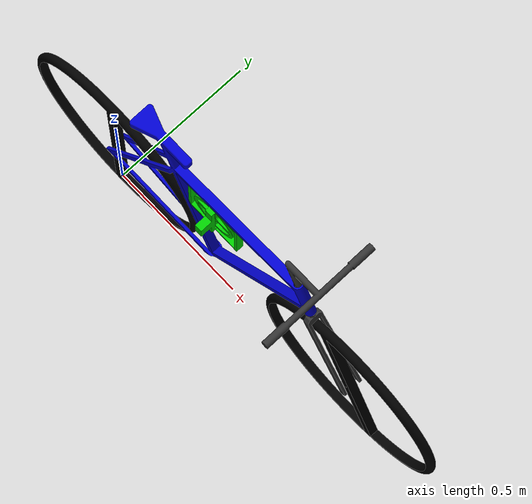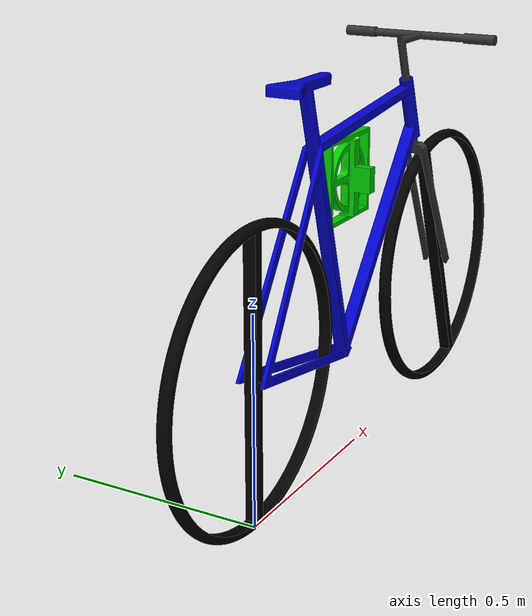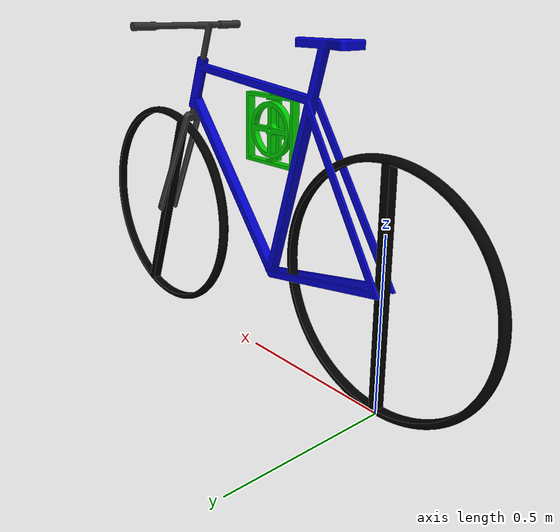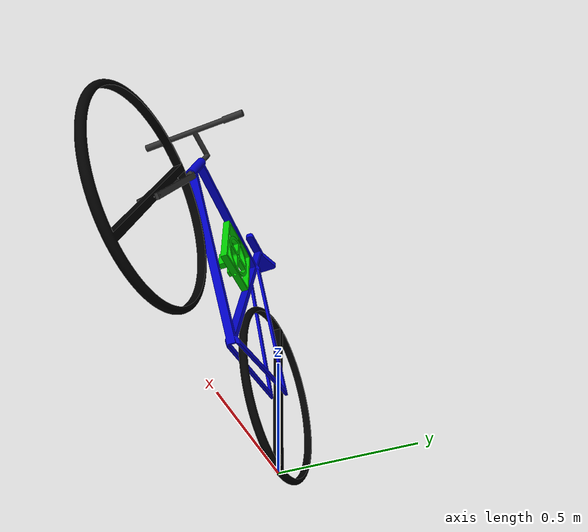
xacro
<?xml version="1.0"?>

<!-- DESCRIPTION: Extension of bicycle model with gimballed flywheel.-->

<robot name="bicycle" xmlns:xacro="http://www.ros.org/wiki/xacro">
<!-- CAD URL: https://cad.onshape.com/documents/e5ef9716c5b71004058bf9ce/w/ae8819e9743ff8e3d490a09a/e/5a0b072f3be44112fc069069 -->

  <!-- Import baseline model -->
  <xacro:include filename="$(find bicycle_description)/urdf/baseline_model.urdf.xacro" />

  <!-- Import gazebo specific tags for this model -->
  <xacro:include filename="$(find bicycle_description)/urdf/gyro.gazebo" />

  <!-- ______Inertia Parameters______ -->

  <!-- flywheel (f) -->
  <xacro:property name="m_f" value="${1.3}"/>

  <xacro:property name="I_fxx" value="${0.005}"/>
  <xacro:property name="I_fyy" value="${0.002}"/>
  <xacro:property name="I_fzz" value="${0.002}"/>
  <xacro:property name="I_fxy" value="${0}"/>
  <xacro:property name="I_fxz" value="${0}"/>
  <xacro:property name="I_fyz" value="${0}"/>

  <xacro:property name="x_f" value="${0}"/>
  <xacro:property name="y_f" value="${0}"/>
  <xacro:property name="z_f" value="${0}"/>

  <!-- Gimbal frame (G) -->
  <xacro:property name="m_G" value="${0.5}"/>

  <xacro:property name="I_Gxx" value="${0.003}"/>
  <xacro:property name="I_Gyy" value="${0.006}"/>
  <xacro:property name="I_Gzz" value="${0.002}"/>
  <xacro:property name="I_Gxy" value="${0}"/>
  <xacro:property name="I_Gxz" value="${0}"/>
  <xacro:property name="I_Gyz" value="${0}"/>

  <xacro:property name="x_G" value="${0}"/>
  <xacro:property name="y_G" value="${0}"/>
  <xacro:property name="z_G" value="${0}"/>

  <!-- gimbal (g) -->
  <xacro:property name="m_g" value="${0.5}"/>

  <xacro:property name="I_gxx" value="${0.001}"/>
  <xacro:property name="I_gyy" value="${0.001}"/>
  <xacro:property name="I_gzz" value="${0.0001}"/>
  <xacro:property name="I_gxy" value="${0}"/>
  <xacro:property name="I_gxz" value="${0}"/>
  <xacro:property name="I_gyz" value="${0}"/>

  <xacro:property name="x_g" value="${0}"/>
  <xacro:property name="y_g" value="${0.033}"/>
  <xacro:property name="z_g" value="${0}"/>

  <!--_____________FLYWHEEL LINK_________-->

  <!-- Flywheel mesh has origin at center, and is oriented with x-axis along flywheel
  spin axis. -->

   <link name="flywheel">
    <visual>
      <origin rpy="0 0 0" xyz="0 0 0"/>
      <geometry>
          <mesh filename="package://bicycle_description/meshes/gyro_model/flywheel.stl" />
      </geometry>
      <material name="green"/>
    </visual>

    <collision>
      <origin rpy="0 0 0" xyz="0 0 0"/>
      <geometry>
          <mesh filename="package://bicycle_description/meshes/gyro_model/flywheel.stl" />
      </geometry>
    </collision>

    <inertial>
      <origin rpy="0 0 0" xyz="${x_f} ${y_f} ${z_f}"/>
      <mass value="${m_f}"/>
      <inertia ixx="${I_fxx}" ixy="${I_fxy}" ixz="${I_fxy}"
               iyy="${I_fyy}" iyz="${I_fyz}"
               izz="${I_fzz}" />
    </inertial>
  </link>

  <!--_________GIMBAL FRAME LINK_________-->

   <link name="gimbal_frame">
    <visual>
      <origin rpy="0 0 0" xyz="0 0 0"/>
      <geometry>
          <mesh filename="package://bicycle_description/meshes/gyro_model/gimbal_frame.stl" />
      </geometry>
      <material name="green"/>
    </visual>

    <collision>
      <origin rpy="0 0 0" xyz="0 0 0"/>
      <geometry>
          <mesh filename="package://bicycle_description/meshes/gyro_model/gimbal_frame.stl" />
      </geometry>
    </collision>

    <inertial>
      <origin rpy="0 0 0" xyz="${x_G} ${y_G} ${z_G}"/>
      <mass value="${m_G}"/>
      <inertia ixx="${I_Gxx}" ixy="${I_Gxy}" ixz="${I_Gxy}"
               iyy="${I_Gyy}" iyz="${I_Gyz}"
               izz="${I_Gzz}" />
    </inertial>
  </link>

  <!--_____________GIMBAL LINK___________-->

   <link name="gimbal">
    <visual>
      <origin rpy="0 0 0" xyz="0 0 0"/>
      <geometry>
          <mesh filename="package://bicycle_description/meshes/gyro_model/gimbal.stl" />
      </geometry>
      <material name="green"/>
    </visual>

    <inertial>
      <origin rpy="0 0 0" xyz="${x_g} ${y_g} ${z_g}"/>
      <mass value="${m_g}"/>
      <inertia ixx="${I_gxx}" ixy="${I_gxy}" ixz="${I_gxy}"
               iyy="${I_gyy}" iyz="${I_gyz}"
               izz="${I_gzz}" />
    </inertial>
  </link>

  <!--______________JOINTS_______________-->

  <!-- Connects gimbal_frame to back_frame. The xyz offset is relative to center
  of back_wheel axle (where back_frame's joint frame is at).  -->
  <joint name="gimbal_frame_location" type="fixed">
    <parent link="back_frame"/>
    <child link="gimbal_frame"/>
    <origin xyz="0.43 0 0.7" rpy="0 0 0"/>
  </joint>

  <!-- Connects the gimbal to the gimbal_frame -->
  <joint name="gimbal_joint" type="continuous">
    <parent link="gimbal_frame"/>
    <child link="gimbal"/>
    <origin xyz="0 0 0" rpy="0 0 ${PI}"/>
    <axis xyz="0 0 1"/>
    <dynamic damping="0" friction="0.002" />
  </joint>

  <!-- Connects flywheel to gimbal -->
  <joint name="flywheel_joint" type="continuous">
    <parent link="gimbal"/>
    <child link="flywheel"/>
    <origin xyz="0 0 0" rpy="0 0 0"/>
    <axis xyz="0 1 0"/>
    <dynamic damping="0" friction="0.002" />
  </joint>

</robot>

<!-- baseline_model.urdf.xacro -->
<robot name="bicycle" xmlns:xacro="http://www.ros.org/wiki/xacro">
<!-- CAD URL: https://cad.onshape.com/documents/e5ef9716c5b71004058bf9ce/w/ae8819e9743ff8e3d490a09a/e/5a0b072f3be44112fc069069 -->

   <!-- Import Rviz colors -->
  <xacro:include filename="$(find bicycle_description)/urdf/colors.xacro" />

  <!-- Import all Gazebo-customization elements, including Gazebo colors -->
  <xacro:include filename="$(find bicycle_description)/urdf/baseline.gazebo" />

  <!-- Constants for robot dimensions -->
  <xacro:property name="PI" value="3.1415926535897931"/>
  <xacro:property name="DEG2RAD" value="0.0174533"/>

  <!-- Basic Geometric Parameters -->
  <xacro:property name="wheel_radius" value="${0.35}"/>
  <xacro:property name="wheel_base" value="${1.0}"/>
  <xacro:property name="trail" value="${0.08}"/>
  <xacro:property name="steer_axis_tilt" value="${20*DEG2RAD}"/>

  <!-- Derived Values. d1-3 from alternative parameterization -->
  <xacro:property name="wheel_diameter" value="${wheel_radius*2}"/>
  <xacro:property name="d1" value="${cos(steer_axis_tilt)*(trail+wheel_base-wheel_radius*tan(steer_axis_tilt))}"/>
  <xacro:property name="d3" value="${-cos(steer_axis_tilt)*(trail-wheel_radius*tan(steer_axis_tilt))}"/>
  <xacro:property name="d2" value="${(wheel_radius+d1*sin(steer_axis_tilt)-wheel_radius+d3*sin(steer_axis_tilt))/cos(steer_axis_tilt)}"/>

  <!-- ______Inertia Parameters______ -->

  <!-- Front/Back Wheel (w) -->
  <!-- Wheel mesh frame has origin at center of wheel. Frame orientation is such
  that wheel lies in xz plane, with y axis perpindicular (i.e. along rotation axis)-->
  <xacro:property name="m_w" value="${1.5}"/>

  <xacro:property name="I_wxx" value="${0.07}"/>
  <xacro:property name="I_wyy" value="${0.14}"/>
  <xacro:property name="I_wzz" value="${0.07}"/>
  <xacro:property name="I_wxy" value="${0.0}"/>
  <xacro:property name="I_wxz" value="${0.0}"/>
  <xacro:property name="I_wyz" value="${0.0}"/>

  <xacro:property name="x_w" value="${0}"/>
  <xacro:property name="y_w" value="${0}"/>
  <xacro:property name="z_w" value="${0}"/>

  <!-- Main Frame (b) -->
  <xacro:property name="m_b" value="${12}"/>

  <xacro:property name="I_bxx" value="${0.476}"/>
  <xacro:property name="I_byy" value="${1.033}"/>
  <xacro:property name="I_bzz" value="${0.527}"/>
  <xacro:property name="I_bxy" value="${0.0}"/>
  <xacro:property name="I_bxz" value="${-0.274}"/>
  <xacro:property name="I_byz" value="${0.0}"/>

  <xacro:property name="x_b" value="${0.439}"/>
  <xacro:property name="y_b" value="${0}"/>
  <xacro:property name="z_b" value="${0.579}"/>

  <!-- Steering and handlebars (h) -->
  <xacro:property name="m_h" value="${2}"/>

  <xacro:property name="I_hxx" value="${0.08}"/>
  <xacro:property name="I_hyy" value="${0.07}"/>
  <xacro:property name="I_hzz" value="${0.02}"/>
  <xacro:property name="I_hxy" value="${0}"/>
  <xacro:property name="I_hxz" value="${0.02}"/>
  <xacro:property name="I_hyz" value="${0}"/>

  <xacro:property name="x_h" value="${0.866}"/>
  <xacro:property name="y_h" value="${0}"/>
  <xacro:property name="z_h" value="${0.676}"/>

  <!--_________BACK WHEEL LINK____________-->

   <link name="back_wheel">
    <visual>
      <origin rpy="0 0 0" xyz="0 0 0"/>
      <geometry>
          <mesh filename="package://bicycle_description/meshes/baseline_model/wheel_medium.stl" />
      </geometry>
      <material name="black"/>
    </visual>

    <collision>
      <origin rpy="0 0 0" xyz="0 0 0"/>
      <geometry>
          <mesh filename="package://bicycle_description/meshes/baseline_model/wheel_medium.stl" />
      </geometry>
    </collision>

    <inertial>
      <origin rpy="0 0 0" xyz="${x_w} ${y_w} ${z_w}"/>
      <mass value="${m_w}"/>
      <inertia ixx="${I_wxx}" ixy="${I_wxy}" ixz="${I_wxy}"
               iyy="${I_wyy}" iyz="${I_wyz}"
               izz="${I_wzz}" />
    </inertial>
  </link>

  <!--_________BACK FRAME LINK___________-->

   <link name="back_frame">
    <visual>
      <origin rpy="0 0 0" xyz="0 0 ${wheel_radius}"/>
      <geometry>
          <mesh filename="package://bicycle_description/meshes/baseline_model/back_frame.stl" />
      </geometry>
      <material name="blue"/>
    </visual>

    <collision>
      <origin rpy="0 0 0" xyz="0 0 ${wheel_radius}"/>
      <geometry>
          <mesh filename="package://bicycle_description/meshes/baseline_model/back_frame.stl" />
      </geometry>
    </collision>

    <inertial>
      <origin rpy="0 0 0" xyz="${x_b} ${y_b} ${z_b}"/>
      <mass value="${m_b}"/>
      <inertia ixx="${I_bxx}" ixy="${I_bxy}" ixz="${I_bxy}"
               iyy="${I_byy}" iyz="${I_byz}"
               izz="${I_bzz}" />
    </inertial>
  </link>

  <!--_________FRONT FRAME LINK__________-->

   <link name="front_frame">
    <visual>
      <origin rpy="0 0 0" xyz="0 0 0"/>
      <geometry>
          <mesh filename="package://bicycle_description/meshes/baseline_model/front_frame.stl" />
      </geometry>
      <material name="gray"/>
    </visual>

    <collision>
      <origin rpy="0 0 0" xyz="0 0 0"/>
      <geometry>
          <mesh filename="package://bicycle_description/meshes/baseline_model/front_frame.stl" />
      </geometry>
    </collision>

    <inertial>
      <origin rpy="0 ${steer_axis_tilt} 0" xyz="${x_h - d1*cos(steer_axis_tilt)} ${y_h} ${z_h - wheel_radius - d1*sin(steer_axis_tilt)}"/>
      <mass value="${m_h}"/>
      <inertia ixx="${I_hxx}" ixy="${I_hxy}" ixz="${I_hxy}"
               iyy="${I_hyy}" iyz="${I_hyz}"
               izz="${I_hzz}" />
    </inertial>
  </link>

  <!--_________FRONT WHEEL LINK___________-->

   <link name="front_wheel">
    <visual>
      <origin rpy="0 0 0" xyz="0 0 0"/>
      <geometry>
          <mesh filename="package://bicycle_description/meshes/baseline_model/wheel_medium.stl" />
      </geometry>
      <material name="black"/>
    </visual>

    <collision>
      <origin rpy="0 0 0" xyz="0 0 0"/>
      <geometry>
          <mesh filename="package://bicycle_description/meshes/baseline_model/wheel_medium.stl" />
      </geometry>
    </collision>

    <inertial>
      <origin rpy="0 0 0" xyz="${x_w} ${y_w} ${z_w}"/>
      <mass value="${m_w}"/>
      <inertia ixx="${I_wxx}" ixy="${I_wxy}" ixz="${I_wxy}"
               iyy="${I_wyy}" iyz="${I_wyz}"
               izz="${I_wzz}" />
    </inertial>
  </link>

  <!--______________JOINTS_______________-->

  <!-- Connects the back_frame to the back_wheel -->
  <joint name="back_wheel_joint" type="continuous">
    <parent link="back_frame"/>
    <child link="back_wheel"/>
    <origin xyz="0 0 ${wheel_radius}" rpy="0 0 0"/>
    <axis xyz="0 1 0"/>
    <dynamic damping="0" friction="0.002" />
  </joint>

  <!-- Connects the front_frame to the back_frame -->
  <joint name="steering_joint" type="continuous">
    <parent link="back_frame"/>
    <child link="front_frame"/>
    <origin rpy="0 ${-steer_axis_tilt} 0" xyz="${d1*cos(steer_axis_tilt)} 0 ${d1*sin(steer_axis_tilt) + wheel_radius}" />
    <axis xyz="0 0 1"/>
    <dynamic damping="0" friction="0.002" />
  </joint>

  <!-- Connects the front_wheel to front_frame-->
  <joint name="front_wheel_joint" type="continuous">
    <parent link="front_frame"/>
    <child link="front_wheel"/>
    <origin xyz="${d3} 0 ${-d2}" rpy="0 0 0"/>
    <axis xyz="0 1 0"/>
    <dynamic damping="0" friction="0.002" />
  </joint>

  <!--__________DUMMY LINK_______________-->
  <link name="dummy_link">
  </link>

  <joint name="dummy" type="fixed">
    <parent link="dummy_link"/>
    <child link="back_frame"/>
    <origin xyz="0 0 0" rpy="0 0 0"/>
  </joint>

</robot>

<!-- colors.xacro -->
<robot>

    <material name="wood">
        <color rgba="0.8 0.7 0 1"/>
    </material>

    <material name="plastic">
        <color rgba="0.5 0.5 0.5 0.7"/>
    </material>

    <material name="metal">
        <color rgba="0.8 0.8 0.8 1"/>
    </material>

    <material name="blue">
        <color rgba="0 0 0.8 1"/>
    </material>

    <material name="black">
        <color rgba="0 0 0 1"/>
    </material>

    <material name="white">
        <color rgba="1 1 1 1"/>
    </material>

    <material name="green">
        <color rgba="0.0 0.8 0.0 1.0"/>
    </material>

    <material name="gray">
        <color rgba="0.2 0.2 0.2 1.0"/>
    </material>

    <material name="orange">
        <color rgba="${255/255} ${108/255} ${10/255} 1.0"/>
    </material>

    <material name="brown">
        <color rgba="${222/255} ${207/255} ${195/255} 1.0"/>
    </material>

    <material name="red">
        <color rgba="0.8 0.0 0.0 1.0"/>
    </material>

    <material name="purple">
        <color rgba="${167/255} ${149/255} ${210/255} 1.0"/>
    </material>

</robot>
